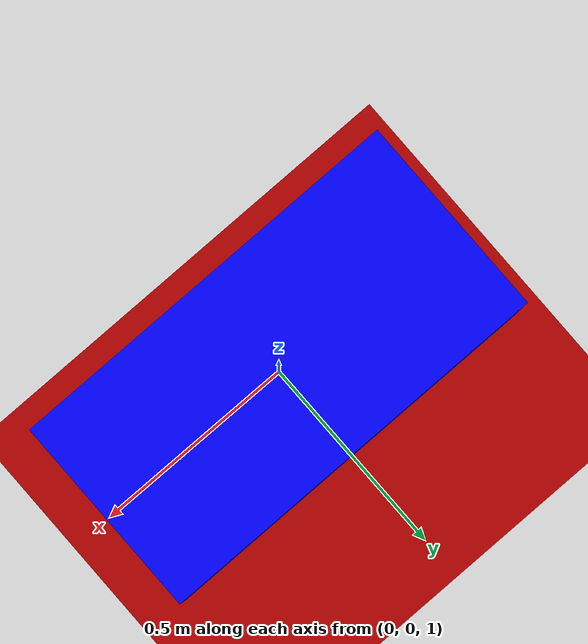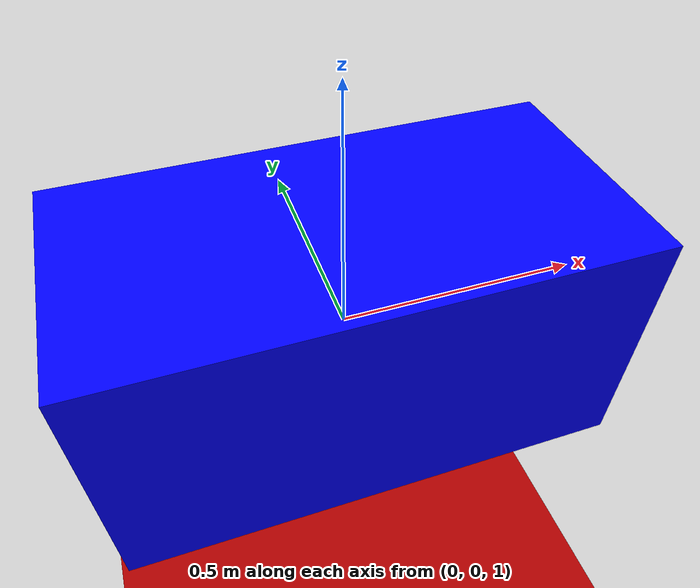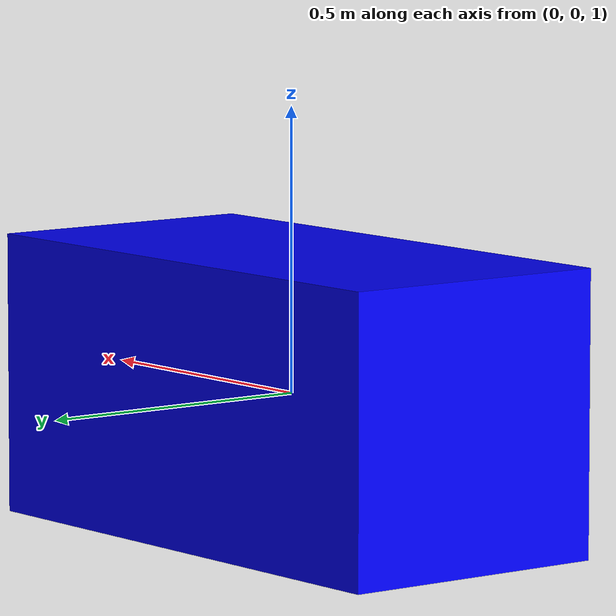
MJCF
<mujoco>
  <option gravity="0 0 -9.81" />
  <worldbody>
    <body name="object_1" pos="0 0 1">
      <geom type="box" size="0.5 0.25 0.25" density="2" rgba="0 0 1 1" />
      <joint name="object_1_joint" type="free" />
    </body>
    <body name="object_2" pos="0 0 0">
      <geom type="plane" size="5 10 0.1" rgba="0.7 0 0 1" friction="0.3 0.3 0.3" />
    </body>
    <body name="object_3" pos="0 0 -10">
      <geom type="plane" size="30 30 0.1" rgba="0.7 0.7 0.7 1" friction="1 1 1" />
    </body>
  </worldbody>
</mujoco>
